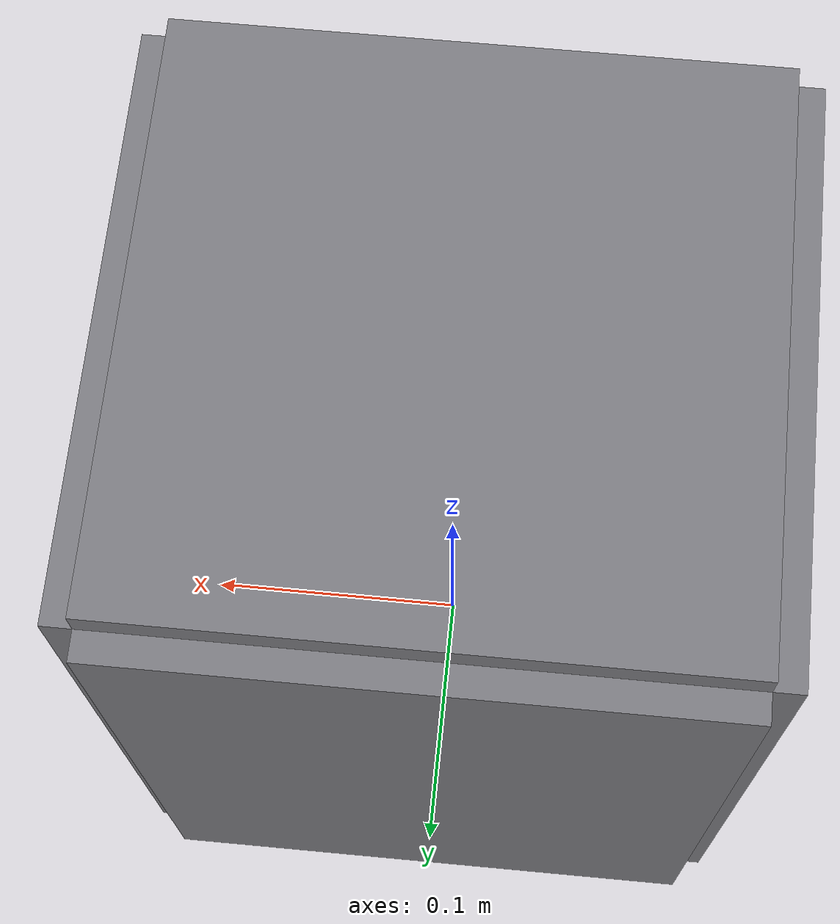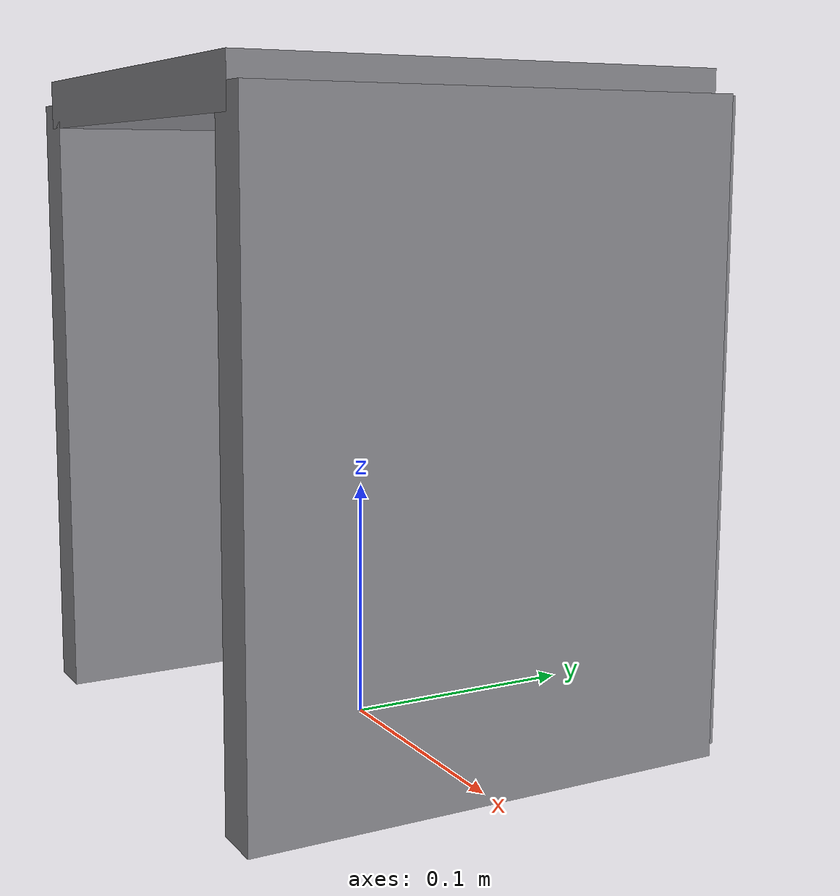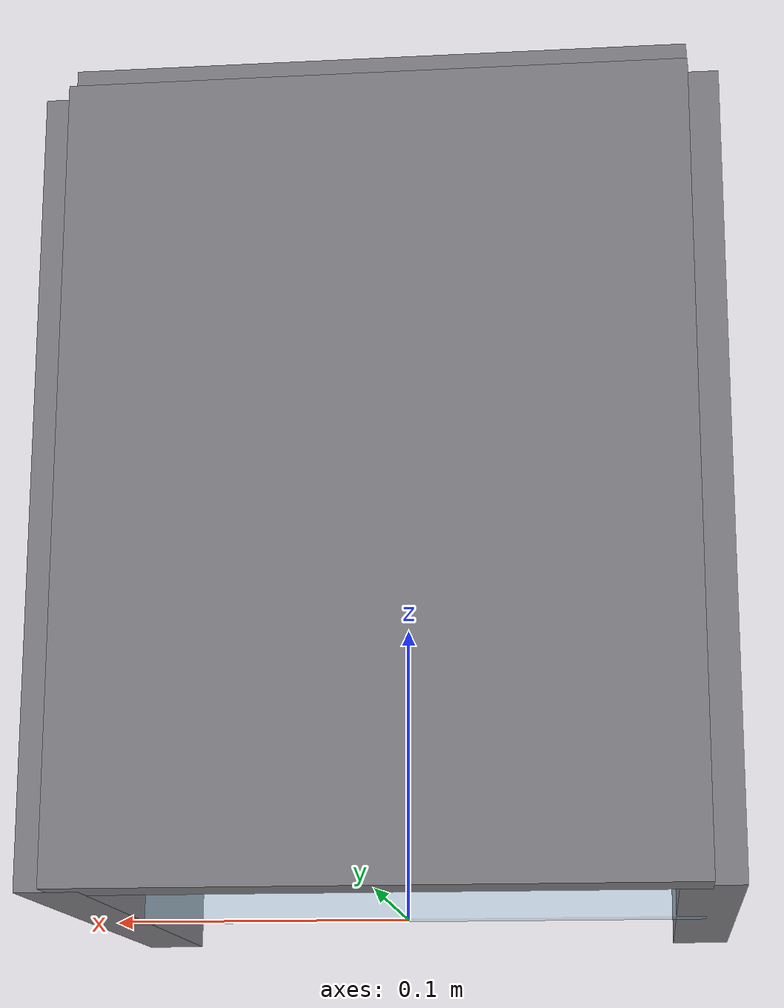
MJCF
<?xml version="1.0" encoding="utf-8"?>
<mujoco model="catalytic_cracker_model">
  <compiler angle="radian" autolimits="true"/>
  <default>
    <default class="body"><geom contype="1" conaffinity="1"/></default>
  </default>
  <worldbody>
    <body name="base">
      <geom type="box" size="0.1 0.01 0.13" pos="0 0.1 0.13" rgba="0.5 0.5 0.52 1" class="body"/>
      <geom type="box" size="0.01 0.1 0.13" pos="-0.1 0 0.13" rgba="0.5 0.5 0.52 1" class="body"/>
      <geom type="box" size="0.01 0.1 0.13" pos="0.1 0 0.13" rgba="0.5 0.5 0.52 1" class="body"/>
      <geom type="box" size="0.1 0.1 0.01" pos="0 0 0.26" rgba="0.5 0.5 0.52 1" class="body"/>
      <body name="door" pos="-0.1 0.0 0.13">
        <joint name="door_joint" type="hinge" axis="0 0 1" range="0 1.8" damping="0.6" frictionloss="0.3"/>
  <geom type="box" size="0.1 0.005 0.13" pos="0.1 0 0" rgba="0.6 0.8 0.9 0.35" class="body"/>
      </body>
    </body>
  </worldbody>
</mujoco>
